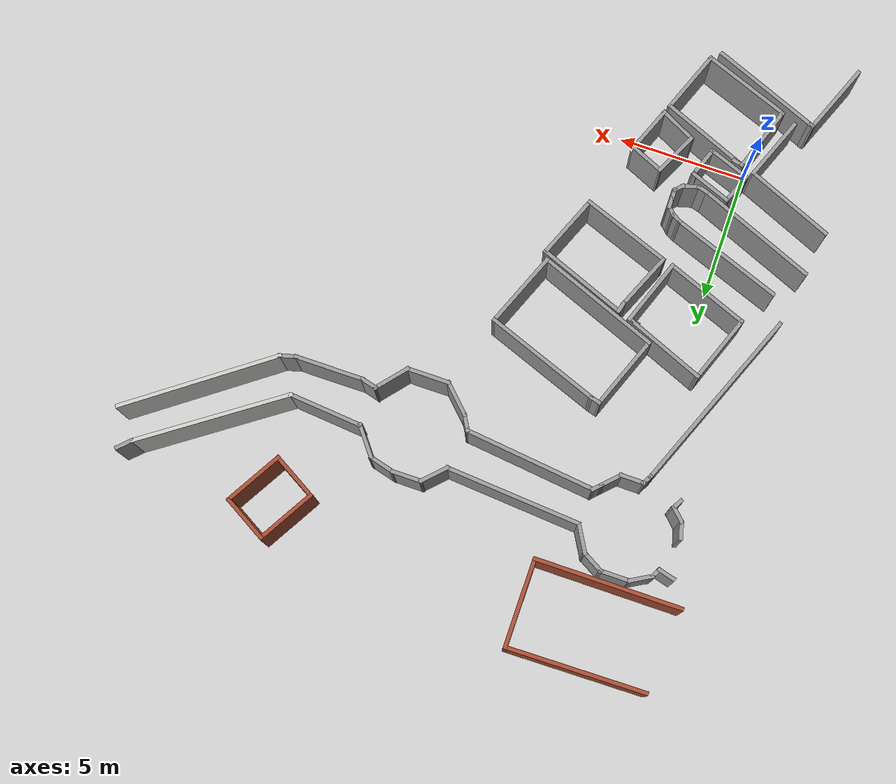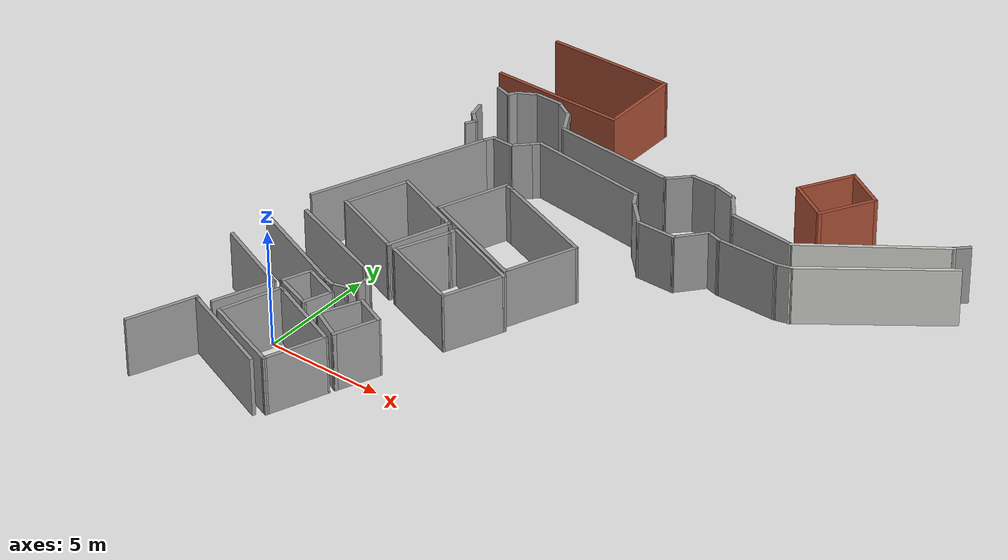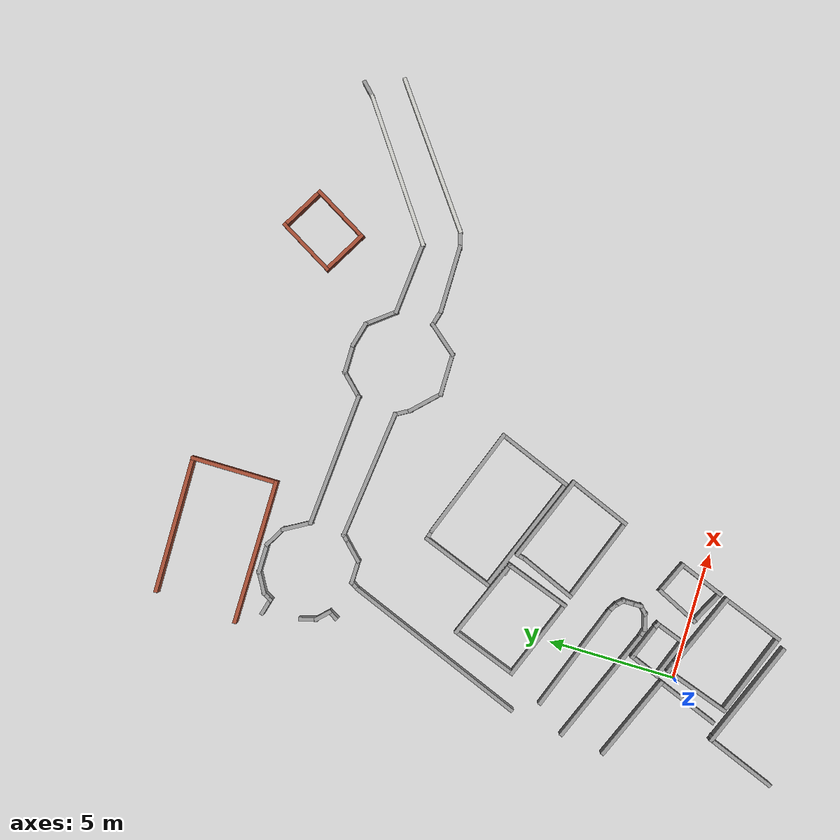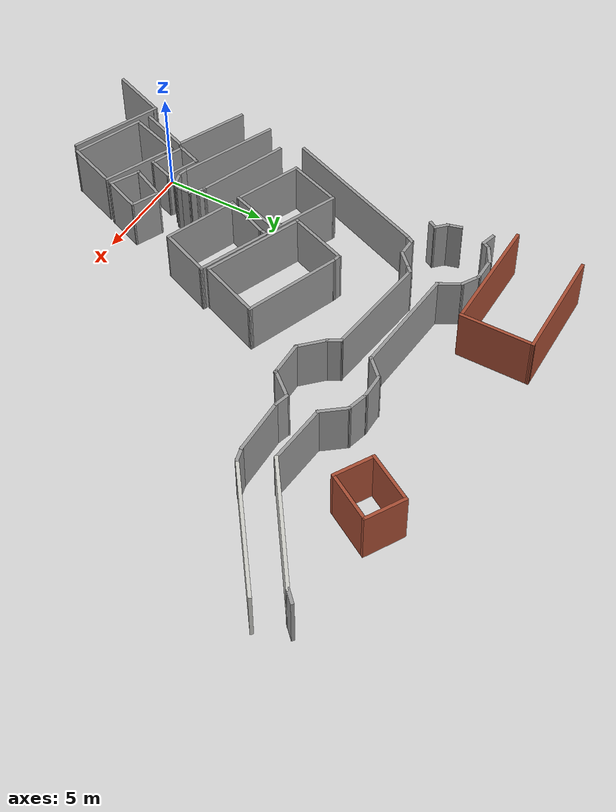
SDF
<sdf version="1.6">
 <model name="palazzo">
  <pose>-1.20783 -1.18535 0 0 -0 0</pose>
  <link name="Wall_0">
   <collision name="Wall_0_Collision">
    <geometry><box><size>2.5 0.15 2.5</size></box></geometry>
    <pose>0 0 1.25 0 -0 0</pose>
   </collision>
   <visual name="Wall_0_Visual">
    <pose>0 0 1.25 0 -0 0</pose>
    <geometry><box><size>2.5 0.15 2.5</size></box></geometry>
    <material>
     <script><uri>file://media/materials/scripts/gazebo.material</uri><name>Gazebo/Bricks</name></script>
     <ambient>1 1 1 1</ambient>
    </material>
    <meta><layer>0</layer></meta>
   </visual>
   <pose>13.2282 19.6167 0 0 -0 -2.0944</pose>
  </link>
  <link name="Wall_1">
   <collision name="Wall_1_Collision">
    <geometry><box><size>2 0.15 2.5</size></box></geometry>
    <pose>0 0 1.25 0 -0 0</pose>
   </collision>
   <visual name="Wall_1_Visual">
    <pose>0 0 1.25 0 -0 0</pose>
    <geometry><box><size>2 0.15 2.5</size></box></geometry>
    <material>
     <script><uri>file://media/materials/scripts/gazebo.material</uri><name>Gazebo/Bricks</name></script>
     <ambient>1 1 1 1</ambient>
    </material>
    <meta><layer>0</layer></meta>
   </visual>
   <pose>13.4418 18.1366 0 0 -0 -0.523599</pose>
  </link>
  <link name="Wall_100">
   <collision name="Wall_100_Collision">
    <geometry><box><size>1.53211 0.15 2.5</size></box></geometry>
    <pose>0 0 1.25 0 -0 0</pose>
   </collision>
   <visual name="Wall_100_Visual">
    <pose>0 0 1.25 0 -0 0</pose>
    <geometry><box><size>1.53211 0.15 2.5</size></box></geometry>
    <material>
     <script><uri>file://media/materials/scripts/gazebo.material</uri><name>Gazebo/Grey</name></script>
     <ambient>1 1 1 1</ambient>
    </material>
    <meta><layer>0</layer></meta>
   </visual>
   <pose>11.2943 13.5379 0 0 -0 -2.26873</pose>
  </link>
  <link name="Wall_102">
   <collision name="Wall_102_Collision">
    <geometry><box><size>1.75 0.15 2.5</size></box></geometry>
    <pose>0 0 1.25 0 -0 0</pose>
   </collision>
   <visual name="Wall_102_Visual">
    <pose>0 0 1.25 0 -0 0</pose>
    <geometry><box><size>1.75 0.15 2.5</size></box></geometry>
    <material>
     <script><uri>file://media/materials/scripts/gazebo.material</uri><name>Gazebo/Grey</name></script>
     <ambient>1 1 1 1</ambient>
    </material>
    <meta><layer>0</layer></meta>
   </visual>
   <pose>10.0502 13.0084 0 0 -0 3.14159</pose>
  </link>
  <link name="Wall_103">
   <collision name="Wall_103_Collision">
    <geometry><box><size>1.5 0.15 2.5</size></box></geometry>
    <pose>0 0 1.25 0 -0 0</pose>
   </collision>
   <visual name="Wall_103_Visual">
    <pose>0 0 1.25 0 -0 0</pose>
    <geometry><box><size>1.5 0.15 2.5</size></box></geometry>
    <material>
     <script><uri>file://media/materials/scripts/gazebo.material</uri><name>Gazebo/Grey</name></script>
     <ambient>1 1 1 1</ambient>
    </material>
    <meta><layer>0</layer></meta>
   </visual>
   <pose>8.77286 13.4857 0 0 -0 2.35619</pose>
  </link>
  <link name="Wall_104">
   <collision name="Wall_104_Collision">
    <geometry><box><size>0.75 0.15 2.5</size></box></geometry>
    <pose>0 0 1.25 0 -0 0</pose>
   </collision>
   <visual name="Wall_104_Visual">
    <pose>0 0 1.25 0 -0 0</pose>
    <geometry><box><size>0.75 0.15 2.5</size></box></geometry>
    <material>
     <script><uri>file://media/materials/scripts/gazebo.material</uri><name>Gazebo/Grey</name></script>
     <ambient>1 1 1 1</ambient>
    </material>
    <meta><layer>0</layer></meta>
   </visual>
   <pose>8.14556 14.2228 0 0 -0 2.0944</pose>
  </link>
  <link name="Wall_112">
   <collision name="Wall_112_Collision">
    <geometry><box><size>0.96649 0.15 2.5</size></box></geometry>
    <pose>0 0 1.25 0 -0 0</pose>
   </collision>
   <visual name="Wall_112_Visual">
    <pose>0 0 1.25 0 -0 0</pose>
    <geometry><box><size>0.96649 0.15 2.5</size></box></geometry>
    <material>
     <script><uri>file://media/materials/scripts/gazebo.material</uri><name>Gazebo/Grey</name></script>
     <ambient>1 1 1 1</ambient>
    </material>
    <meta><layer>0</layer></meta>
   </visual>
   <pose>2.42681 14.522 0 0 -0 -2.34798</pose>
  </link>
  <link name="Wall_113">
   <collision name="Wall_113_Collision">
    <geometry><box><size>1.01472 0.15 2.5</size></box></geometry>
    <pose>0 0 1.25 0 -0 0</pose>
   </collision>
   <visual name="Wall_113_Visual">
    <pose>0 0 1.25 0 -0 0</pose>
    <geometry><box><size>1.01472 0.15 2.5</size></box></geometry>
    <material>
     <script><uri>file://media/materials/scripts/gazebo.material</uri><name>Gazebo/Grey</name></script>
     <ambient>1 1 1 1</ambient>
    </material>
    <meta><layer>0</layer></meta>
   </visual>
   <pose>1.7082 14.2365 0 0 -0 3.12887</pose>
  </link>
  <link name="Wall_13">
   <collision name="Wall_13_Collision">
    <geometry><box><size>1.10389 0.15 2.5</size></box></geometry>
    <pose>0 0 1.25 0 -0 0</pose>
   </collision>
   <visual name="Wall_13_Visual">
    <pose>0 0 1.25 0 -0 0</pose>
    <geometry><box><size>1.10389 0.15 2.5</size></box></geometry>
    <material>
     <script><uri>file://media/materials/scripts/gazebo.material</uri><name>Gazebo/Grey</name></script>
     <ambient>1 1 1 1</ambient>
    </material>
    <meta><layer>0</layer></meta>
   </visual>
   <pose>10.5614 16.6824 0 0 -0 2.88449</pose>
  </link>
  <link name="Wall_14">
   <collision name="Wall_14_Collision">
    <geometry><box><size>1.25 0.15 2.5</size></box></geometry>
    <pose>0 0 1.25 0 -0 0</pose>
   </collision>
   <visual name="Wall_14_Visual">
    <pose>0 0 1.25 0 -0 0</pose>
    <geometry><box><size>1.25 0.15 2.5</size></box></geometry>
    <material>
     <script><uri>file://media/materials/scripts/gazebo.material</uri><name>Gazebo/Grey</name></script>
     <ambient>1 1 1 1</ambient>
    </material>
    <meta><layer>0</layer></meta>
   </visual>
   <pose>9.55013 16.8036 0 0 -0 3.14159</pose>
  </link>
  <link name="Wall_15">
   <collision name="Wall_15_Collision">
    <geometry><box><size>1.23667 0.15 2.5</size></box></geometry>
    <pose>0 0 1.25 0 -0 0</pose>
   </collision>
   <visual name="Wall_15_Visual">
    <pose>0 0 1.25 0 -0 0</pose>
    <geometry><box><size>1.23667 0.15 2.5</size></box></geometry>
    <material>
     <script><uri>file://media/materials/scripts/gazebo.material</uri><name>Gazebo/Grey</name></script>
     <ambient>1 1 1 1</ambient>
    </material>
    <meta><layer>0</layer></meta>
   </visual>
   <pose>8.6207 16.4147 0 0 -0 -2.34385</pose>
  </link>
  <link name="Wall_2">
   <collision name="Wall_2_Collision">
    <geometry><box><size>2.5 0.15 2.5</size></box></geometry>
    <pose>0 0 1.25 0 -0 0</pose>
   </collision>
   <visual name="Wall_2_Visual">
    <pose>0 0 1.25 0 -0 0</pose>
    <geometry><box><size>2.5 0.15 2.5</size></box></geometry>
    <material>
     <script><uri>file://media/materials/scripts/gazebo.material</uri><name>Gazebo/Bricks</name></script>
     <ambient>1 1 1 1</ambient>
    </material>
    <meta><layer>0</layer></meta>
   </visual>
   <pose>14.8303 18.6917 0 0 -0 1.0472</pose>
  </link>
  <link name="Wall_26">
   <collision name="Wall_26_Collision">
    <geometry><box><size>5.75 0.15 2.5</size></box></geometry>
    <pose>0 0 1.25 0 -0 0</pose>
   </collision>
   <visual name="Wall_26_Visual">
    <pose>0 0 1.25 0 -0 0</pose>
    <geometry><box><size>5.75 0.15 2.5</size></box></geometry>
    <material>
     <script><uri>file://media/materials/scripts/gazebo.material</uri><name>Gazebo/Bricks</name></script>
     <ambient>1 1 1 1</ambient>
    </material>
    <meta><layer>0</layer></meta>
   </visual>
   <pose>1.35503 18.1482 0 0 -0 0</pose>
  </link>
  <link name="Wall_27">
   <collision name="Wall_27_Collision">
    <geometry><box><size>3.5 0.15 2.5</size></box></geometry>
    <pose>0 0 1.25 0 -0 0</pose>
   </collision>
   <visual name="Wall_27_Visual">
    <pose>0 0 1.25 0 -0 0</pose>
    <geometry><box><size>3.5 0.15 2.5</size></box></geometry>
    <material>
     <script><uri>file://media/materials/scripts/gazebo.material</uri><name>Gazebo/Bricks</name></script>
     <ambient>1 1 1 1</ambient>
    </material>
    <meta><layer>0</layer></meta>
   </visual>
   <pose>4.15503 19.8232 0 0 -0 1.5708</pose>
  </link>
  <link name="Wall_28">
   <collision name="Wall_28_Collision">
    <geometry><box><size>5.46602 0.15 2.5</size></box></geometry>
    <pose>0 0 1.25 0 -0 0</pose>
   </collision>
   <visual name="Wall_28_Visual">
    <pose>0 0 1.25 0 -0 0</pose>
    <geometry><box><size>5.46602 0.15 2.5</size></box></geometry>
    <material>
     <script><uri>file://media/materials/scripts/gazebo.material</uri><name>Gazebo/Bricks</name></script>
     <ambient>1 1 1 1</ambient>
    </material>
    <meta><layer>0</layer></meta>
   </visual>
   <pose>1.49738 21.4544 0 0 -0 -3.12514</pose>
  </link>
  <link name="Wall_3">
   <collision name="Wall_3_Collision">
    <geometry><box><size>2 0.15 2.5</size></box></geometry>
    <pose>0 0 1.25 0 -0 0</pose>
   </collision>
   <visual name="Wall_3_Visual">
    <pose>0 0 1.25 0 -0 0</pose>
    <geometry><box><size>2 0.15 2.5</size></box></geometry>
    <material>
     <script><uri>file://media/materials/scripts/gazebo.material</uri><name>Gazebo/Bricks</name></script>
     <ambient>1 1 1 1</ambient>
    </material>
    <meta><layer>0</layer></meta>
   </visual>
   <pose>14.6168 20.1718 0 0 -0 2.61799</pose>
  </link>
  <link name="Wall_382">
   <collision name="Wall_382_Collision">
    <geometry><box><size>0.75 0.15 2.5</size></box></geometry>
    <pose>0 0 1.25 0 -0 0</pose>
   </collision>
   <visual name="Wall_382_Visual">
    <pose>0 0 1.25 0 -0 0</pose>
    <geometry><box><size>0.75 0.15 2.5</size></box></geometry>
    <material>
     <script><uri>file://media/materials/scripts/gazebo.material</uri><name>Gazebo/Grey</name></script>
     <ambient>1 1 1 1</ambient>
    </material>
    <meta><layer>0</layer></meta>
   </visual>
   <pose>19.7614 19.0299 0 0 -0 -2.35619</pose>
  </link>
  <link name="Wall_384">
   <collision name="Wall_384_Collision">
    <geometry><box><size>6.20788 0.15 2.5</size></box></geometry>
    <pose>0 0 1.25 0 -0 0</pose>
   </collision>
   <visual name="Wall_384_Visual">
    <pose>0 0 1.25 0 -0 0</pose>
    <geometry><box><size>6.20788 0.15 2.5</size></box></geometry>
    <material>
     <script><uri>file://media/materials/scripts/gazebo.material</uri><name>Gazebo/CeilingTiled</name></script>
     <ambient>1 1 1 1</ambient>
    </material>
    <meta><layer>0</layer></meta>
   </visual>
   <pose>17.0772 17.0675 0 0 -0 0.616086</pose>
  </link>
  <link name="Wall_386">
   <collision name="Wall_386_Collision">
    <geometry><box><size>2.95796 0.15 2.5</size></box></geometry>
    <pose>0 0 1.25 0 -0 0</pose>
   </collision>
   <visual name="Wall_386_Visual">
    <pose>0 0 1.25 0 -0 0</pose>
    <geometry><box><size>2.95796 0.15 2.5</size></box></geometry>
    <material>
     <script><uri>file://media/materials/scripts/gazebo.material</uri><name>Gazebo/Grey</name></script>
     <ambient>1 1 1 1</ambient>
    </material>
    <meta><layer>0</layer></meta>
   </visual>
   <pose>13.2067 15.4413 0 0 -0 -0.088478</pose>
  </link>
  <link name="Wall_388">
   <collision name="Wall_388_Collision">
    <geometry><box><size>1.41828 0.15 2.5</size></box></geometry>
    <pose>0 0 1.25 0 -0 0</pose>
   </collision>
   <visual name="Wall_388_Visual">
    <pose>0 0 1.25 0 -0 0</pose>
    <geometry><box><size>1.41828 0.15 2.5</size></box></geometry>
    <material>
     <script><uri>file://media/materials/scripts/gazebo.material</uri><name>Gazebo/Grey</name></script>
     <ambient>1 1 1 1</ambient>
    </material>
    <meta><layer>0</layer></meta>
   </visual>
   <pose>11.4154 16.0632 0 0 -0 -0.902851</pose>
  </link>
  <link name="Wall_62">
   <collision name="Wall_62_Collision">
    <geometry><box><size>1.25 0.15 2.5</size></box></geometry>
    <pose>0 0 1.25 0 -0 0</pose>
   </collision>
   <visual name="Wall_62_Visual">
    <pose>0 0 1.25 0 -0 0</pose>
    <geometry><box><size>1.25 0.15 2.5</size></box></geometry>
    <material>
     <script><uri>file://media/materials/scripts/gazebo.material</uri><name>Gazebo/Grey</name></script>
     <ambient>1 1 1 1</ambient>
    </material>
    <meta><layer>0</layer></meta>
   </visual>
   <pose>2.77316 16.8971 0 0 -0 2.0944</pose>
  </link>
  <link name="Wall_63">
   <collision name="Wall_63_Collision">
    <geometry><box><size>1 0.15 2.5</size></box></geometry>
    <pose>0 0 1.25 0 -0 0</pose>
   </collision>
   <visual name="Wall_63_Visual">
    <pose>0 0 1.25 0 -0 0</pose>
    <geometry><box><size>1 0.15 2.5</size></box></geometry>
    <material>
     <script><uri>file://media/materials/scripts/gazebo.material</uri><name>Gazebo/Grey</name></script>
     <ambient>1 1 1 1</ambient>
    </material>
    <meta><layer>0</layer></meta>
   </visual>
   <pose>2.1301 17.5859 0 0 -0 2.61799</pose>
  </link>
  <link name="Wall_64">
   <collision name="Wall_64_Collision">
    <geometry><box><size>1.25 0.15 2.5</size></box></geometry>
    <pose>0 0 1.25 0 -0 0</pose>
   </collision>
   <visual name="Wall_64_Visual">
    <pose>0 0 1.25 0 -0 0</pose>
    <geometry><box><size>1.25 0.15 2.5</size></box></geometry>
    <material>
     <script><uri>file://media/materials/scripts/gazebo.material</uri><name>Gazebo/Grey</name></script>
     <ambient>1 1 1 1</ambient>
    </material>
    <meta><layer>0</layer></meta>
   </visual>
   <pose>1.21204 17.7984 0 0 -0 3.14159</pose>
  </link>
  <link name="Wall_651">
   <collision name="Wall_651_Collision">
    <geometry><box><size>0.75 0.15 2.5</size></box></geometry>
    <pose>0 0 1.25 0 -0 0</pose>
   </collision>
   <visual name="Wall_651_Visual">
    <pose>0 0 1.25 0 -0 0</pose>
    <geometry><box><size>0.75 0.15 2.5</size></box></geometry>
    <material>
     <script><uri>file://media/materials/scripts/gazebo.material</uri><name>Gazebo/Grey</name></script>
     <ambient>1 1 1 1</ambient>
    </material>
    <meta><layer>0</layer></meta>
   </visual>
   <pose>12.0281 13.9897 0 0 -0 -0.261799</pose>
  </link>
  <link name="Wall_652">
   <collision name="Wall_652_Collision">
    <geometry><box><size>2.75 0.15 2.5</size></box></geometry>
    <pose>0 0 1.25 0 -0 0</pose>
   </collision>
   <visual name="Wall_652_Visual">
    <pose>0 0 1.25 0 -0 0</pose>
    <geometry><box><size>2.75 0.15 2.5</size></box></geometry>
    <material>
     <script><uri>file://media/materials/scripts/gazebo.material</uri><name>Gazebo/Grey</name></script>
     <ambient>1 1 1 1</ambient>
    </material>
    <meta><layer>0</layer></meta>
   </visual>
   <pose>13.6179 13.9121 0 0 -0 0</pose>
  </link>
  <link name="Wall_653">
   <collision name="Wall_653_Collision">
    <geometry><box><size>0.75 0.15 2.5</size></box></geometry>
    <pose>0 0 1.25 0 -0 0</pose>
   </collision>
   <visual name="Wall_653_Visual">
    <pose>0 0 1.25 0 -0 0</pose>
    <geometry><box><size>0.75 0.15 2.5</size></box></geometry>
    <material>
     <script><uri>file://media/materials/scripts/gazebo.material</uri><name>Gazebo/Grey</name></script>
     <ambient>1 1 1 1</ambient>
    </material>
    <meta><layer>0</layer></meta>
   </visual>
   <pose>15.2077 13.9897 0 0 -0 0.261799</pose>
  </link>
  <link name="Wall_655">
   <collision name="Wall_655_Collision">
    <geometry><box><size>6.38931 0.15 2.5</size></box></geometry>
    <pose>0 0 1.25 0 -0 0</pose>
   </collision>
   <visual name="Wall_655_Visual">
    <pose>0 0 1.25 0 -0 0</pose>
    <geometry><box><size>6.38931 0.15 2.5</size></box></geometry>
    <material>
     <script><uri>file://media/materials/scripts/gazebo.material</uri><name>Gazebo/CeilingTiled</name></script>
     <ambient>1 1 1 1</ambient>
    </material>
    <meta><layer>0</layer></meta>
   </visual>
   <pose>18.0057 15.9223 0 0 -0 -2.50482</pose>
  </link>
  <link name="Wall_657">
   <collision name="Wall_657_Collision">
    <geometry><box><size>5.35812 0.15 2.5</size></box></geometry>
    <pose>0 0 1.25 0 -0 0</pose>
   </collision>
   <visual name="Wall_657_Visual">
    <pose>0 0 1.25 0 -0 0</pose>
    <geometry><box><size>5.35812 0.15 2.5</size></box></geometry>
    <material>
     <script><uri>file://media/materials/scripts/gazebo.material</uri><name>Gazebo/Grey</name></script>
     <ambient>1 1 1 1</ambient>
    </material>
    <meta><layer>0</layer></meta>
   </visual>
   <pose>5.64472 16.2233 0 0 -0 -0.075915</pose>
  </link>
  <link name="Wall_659">
   <collision name="Wall_659_Collision">
    <geometry><box><size>0.5 0.15 2.5</size></box></geometry>
    <pose>0 0 1.25 0 -0 0</pose>
   </collision>
   <visual name="Wall_659_Visual">
    <pose>0 0 1.25 0 -0 0</pose>
    <geometry><box><size>0.5 0.15 2.5</size></box></geometry>
    <material>
     <script><uri>file://media/materials/scripts/gazebo.material</uri><name>Gazebo/Grey</name></script>
     <ambient>1 1 1 1</ambient>
    </material>
    <meta><layer>0</layer></meta>
   </visual>
   <pose>2.83685 14.9368 0 0 -0 0.785398</pose>
  </link>
  <link name="Wall_660">
   <collision name="Wall_660_Collision">
    <geometry><box><size>5.21803 0.15 2.5</size></box></geometry>
    <pose>0 0 1.25 0 -0 0</pose>
   </collision>
   <visual name="Wall_660_Visual">
    <pose>0 0 1.25 0 -0 0</pose>
    <geometry><box><size>5.21803 0.15 2.5</size></box></geometry>
    <material>
     <script><uri>file://media/materials/scripts/gazebo.material</uri><name>Gazebo/Grey</name></script>
     <ambient>1 1 1 1</ambient>
    </material>
    <meta><layer>0</layer></meta>
   </visual>
   <pose>5.47808 14.7716 0 0 -0 -0.114281</pose>
  </link>
  <link name="Wall_662">
   <collision name="Wall_662_Collision">
    <geometry><box><size>1 0.15 2.5</size></box></geometry>
    <pose>0 0 1.25 0 -0 0</pose>
   </collision>
   <visual name="Wall_662_Visual">
    <pose>0 0 1.25 0 -0 0</pose>
    <geometry><box><size>1 0.15 2.5</size></box></geometry>
    <material>
     <script><uri>file://media/materials/scripts/gazebo.material</uri><name>Gazebo/Grey</name></script>
     <ambient>1 1 1 1</ambient>
    </material>
    <meta><layer>0</layer></meta>
   </visual>
   <pose>0.293982 17.5859 0 0 -0 -2.61799</pose>
  </link>
  <link name="Wall_663">
   <collision name="Wall_663_Collision">
    <geometry><box><size>0.5 0.15 2.5</size></box></geometry>
    <pose>0 0 1.25 0 -0 0</pose>
   </collision>
   <visual name="Wall_663_Visual">
    <pose>0 0 1.25 0 -0 0</pose>
    <geometry><box><size>0.5 0.15 2.5</size></box></geometry>
    <material>
     <script><uri>file://media/materials/scripts/gazebo.material</uri><name>Gazebo/Grey</name></script>
     <ambient>1 1 1 1</ambient>
    </material>
    <meta><layer>0</layer></meta>
   </visual>
   <pose>-0.161579 17.2219 0 0 -0 -2.0944</pose>
  </link>
  <link name="Wall_664">
   <collision name="Wall_664_Collision">
    <geometry><box><size>0.75 0.15 2.5</size></box></geometry>
    <pose>0 0 1.25 0 -0 0</pose>
   </collision>
   <visual name="Wall_664_Visual">
    <pose>0 0 1.25 0 -0 0</pose>
    <geometry><box><size>0.75 0.15 2.5</size></box></geometry>
    <material>
     <script><uri>file://media/materials/scripts/gazebo.material</uri><name>Gazebo/Grey</name></script>
     <ambient>1 1 1 1</ambient>
    </material>
    <meta><layer>0</layer></meta>
   </visual>
   <pose>-0.538857 17.148 0 0 -0 2.87979</pose>
  </link>
  <link name="Wall_669">
   <collision name="Wall_669_Collision">
    <geometry><box><size>0.75 0.15 2.5</size></box></geometry>
    <pose>0 0 1.25 0 -0 0</pose>
   </collision>
   <visual name="Wall_669_Visual">
    <pose>0 0 1.25 0 -0 0</pose>
    <geometry><box><size>0.75 0.15 2.5</size></box></geometry>
    <material>
     <script><uri>file://media/materials/scripts/gazebo.material</uri><name>Gazebo/Grey</name></script>
     <ambient>1 1 1 1</ambient>
    </material>
    <meta><layer>0</layer></meta>
   </visual>
   <pose>-0.264142 14.9466 0 0 -0 2.35619</pose>
  </link>
  <link name="Wall_670">
   <collision name="Wall_670_Collision">
    <geometry><box><size>0.75 0.15 2.5</size></box></geometry>
    <pose>0 0 1.25 0 -0 0</pose>
   </collision>
   <visual name="Wall_670_Visual">
    <pose>0 0 1.25 0 -0 0</pose>
    <geometry><box><size>0.75 0.15 2.5</size></box></geometry>
    <material>
     <script><uri>file://media/materials/scripts/gazebo.material</uri><name>Gazebo/Grey</name></script>
     <ambient>1 1 1 1</ambient>
    </material>
    <meta><layer>0</layer></meta>
   </visual>
   <pose>-0.55392 15.4486 0 0 -0 1.8326</pose>
  </link>
  <link name="Wall_691">
   <collision name="Wall_691_Collision">
    <geometry><box><size>0.5 0.15 2.5</size></box></geometry>
    <pose>0 0 1.25 0 -0 0</pose>
   </collision>
   <visual name="Wall_691_Visual">
    <pose>0 0 1.25 0 -0 0</pose>
    <geometry><box><size>0.5 0.15 2.5</size></box></geometry>
    <material>
     <script><uri>file://media/materials/scripts/gazebo.material</uri><name>Gazebo/Grey</name></script>
     <ambient>1 1 1 1</ambient>
    </material>
    <meta><layer>0</layer></meta>
   </visual>
   <pose>1.18837 14.0904 0 0 -0 -2.0944</pose>
  </link>
  <link name="Wall_693">
   <collision name="Wall_693_Collision">
    <geometry><box><size>7.69663 0.15 2.5</size></box></geometry>
    <pose>0 0 1.25 0 -0 0</pose>
   </collision>
   <visual name="Wall_693_Visual">
    <pose>0 0 1.25 0 -0 0</pose>
    <geometry><box><size>7.69663 0.15 2.5</size></box></geometry>
    <material>
     <script><uri>file://media/materials/scripts/gazebo.material</uri><name>Gazebo/Grey</name></script>
     <ambient>1 1 1 1</ambient>
    </material>
    <meta><layer>0</layer></meta>
   </visual>
   <pose>-0.300491 10.4354 0 0 -0 1.19029</pose>
  </link>
  <link name="Wall_695">
   <collision name="Wall_695_Collision">
    <geometry><box><size>0.5 0.15 2.5</size></box></geometry>
    <pose>0 0 1.25 0 -0 0</pose>
   </collision>
   <visual name="Wall_695_Visual">
    <pose>0 0 1.25 0 -0 0</pose>
    <geometry><box><size>0.5 0.15 2.5</size></box></geometry>
    <material>
     <script><uri>file://media/materials/scripts/gazebo.material</uri><name>Gazebo/Grey</name></script>
     <ambient>1 1 1 1</ambient>
    </material>
    <meta><layer>0</layer></meta>
   </visual>
   <pose>-0.13951 14.583 0 0 -0 -2.0944</pose>
  </link>
  <link name="Wall_711">
   <collision name="Wall_711_Collision">
    <geometry><box><size>0.5 0.15 2.5</size></box></geometry>
    <pose>0 0 1.25 0 -0 0</pose>
   </collision>
   <visual name="Wall_711_Visual">
    <pose>0 0 1.25 0 -0 0</pose>
    <geometry><box><size>0.5 0.15 2.5</size></box></geometry>
    <material>
     <script><uri>file://media/materials/scripts/gazebo.material</uri><name>Gazebo/Grey</name></script>
     <ambient>1 1 1 1</ambient>
    </material>
    <meta><layer>0</layer></meta>
   </visual>
   <pose>3.18249 4.28897 0 0 -0 2.61799</pose>
  </link>
  <link name="Wall_712">
   <collision name="Wall_712_Collision">
    <geometry><box><size>4.57798 0.15 2.5</size></box></geometry>
    <pose>0 0 1.25 0 -0 0</pose>
   </collision>
   <visual name="Wall_712_Visual">
    <pose>0 0 1.25 0 -0 0</pose>
    <geometry><box><size>4.57798 0.15 2.5</size></box></geometry>
    <material>
     <script><uri>file://media/materials/scripts/gazebo.material</uri><name>Gazebo/Grey</name></script>
     <ambient>1 1 1 1</ambient>
    </material>
    <meta><layer>0</layer></meta>
   </visual>
   <pose>0.956515 5.15012 0 0 -0 2.78462</pose>
  </link>
  <link name="Wall_714">
   <collision name="Wall_714_Collision">
    <geometry><box><size>0.5 0.15 2.5</size></box></geometry>
    <pose>0 0 1.25 0 -0 0</pose>
   </collision>
   <visual name="Wall_714_Visual">
    <pose>0 0 1.25 0 -0 0</pose>
    <geometry><box><size>0.5 0.15 2.5</size></box></geometry>
    <material>
     <script><uri>file://media/materials/scripts/gazebo.material</uri><name>Gazebo/Grey</name></script>
     <ambient>1 1 1 1</ambient>
    </material>
    <meta><layer>0</layer></meta>
   </visual>
   <pose>3.45778 4.07772 0 0 -0 -0.785398</pose>
  </link>
  <link name="Wall_715">
   <collision name="Wall_715_Collision">
    <geometry><box><size>0.5 0.15 2.5</size></box></geometry>
    <pose>0 0 1.25 0 -0 0</pose>
   </collision>
   <visual name="Wall_715_Visual">
    <pose>0 0 1.25 0 -0 0</pose>
    <geometry><box><size>0.5 0.15 2.5</size></box></geometry>
    <material>
     <script><uri>file://media/materials/scripts/gazebo.material</uri><name>Gazebo/Grey</name></script>
     <ambient>1 1 1 1</ambient>
    </material>
    <meta><layer>0</layer></meta>
   </visual>
   <pose>3.58153 3.77898 0 0 -0 -1.5708</pose>
  </link>
  <link name="Wall_716">
   <collision name="Wall_716_Collision">
    <geometry><box><size>0.5 0.15 2.5</size></box></geometry>
    <pose>0 0 1.25 0 -0 0</pose>
   </collision>
   <visual name="Wall_716_Visual">
    <pose>0 0 1.25 0 -0 0</pose>
    <geometry><box><size>0.5 0.15 2.5</size></box></geometry>
    <material>
     <script><uri>file://media/materials/scripts/gazebo.material</uri><name>Gazebo/Grey</name></script>
     <ambient>1 1 1 1</ambient>
    </material>
    <meta><layer>0</layer></meta>
   </visual>
   <pose>3.58153 3.42898 0 0 -0 -1.5708</pose>
  </link>
  <link name="Wall_717">
   <collision name="Wall_717_Collision">
    <geometry><box><size>0.5 0.15 2.5</size></box></geometry>
    <pose>0 0 1.25 0 -0 0</pose>
   </collision>
   <visual name="Wall_717_Visual">
    <pose>0 0 1.25 0 -0 0</pose>
    <geometry><box><size>0.5 0.15 2.5</size></box></geometry>
    <material>
     <script><uri>file://media/materials/scripts/gazebo.material</uri><name>Gazebo/Grey</name></script>
     <ambient>1 1 1 1</ambient>
    </material>
    <meta><layer>0</layer></meta>
   </visual>
   <pose>3.45778 3.13023 0 0 -0 -2.35619</pose>
  </link>
  <link name="Wall_718">
   <collision name="Wall_718_Collision">
    <geometry><box><size>0.75 0.15 2.5</size></box></geometry>
    <pose>0 0 1.25 0 -0 0</pose>
   </collision>
   <visual name="Wall_718_Visual">
    <pose>0 0 1.25 0 -0 0</pose>
    <geometry><box><size>0.75 0.15 2.5</size></box></geometry>
    <material>
     <script><uri>file://media/materials/scripts/gazebo.material</uri><name>Gazebo/Grey</name></script>
     <ambient>1 1 1 1</ambient>
    </material>
    <meta><layer>0</layer></meta>
   </visual>
   <pose>3.04426 2.92885 0 0 -0 -2.87979</pose>
  </link>
  <link name="Wall_719">
   <collision name="Wall_719_Collision">
    <geometry><box><size>0.5 0.15 2.5</size></box></geometry>
    <pose>0 0 1.25 0 -0 0</pose>
   </collision>
   <visual name="Wall_719_Visual">
    <pose>0 0 1.25 0 -0 0</pose>
    <geometry><box><size>0.5 0.15 2.5</size></box></geometry>
    <material>
     <script><uri>file://media/materials/scripts/gazebo.material</uri><name>Gazebo/Grey</name></script>
     <ambient>1 1 1 1</ambient>
    </material>
    <meta><layer>0</layer></meta>
   </visual>
   <pose>2.58545 2.89649 0 0 -0 2.87979</pose>
  </link>
  <link name="Wall_721">
   <collision name="Wall_721_Collision">
    <geometry><box><size>4.9726 0.15 2.5</size></box></geometry>
    <pose>0 0 1.25 0 -0 0</pose>
   </collision>
   <visual name="Wall_721_Visual">
    <pose>0 0 1.25 0 -0 0</pose>
    <geometry><box><size>4.9726 0.15 2.5</size></box></geometry>
    <material>
     <script><uri>file://media/materials/scripts/gazebo.material</uri><name>Gazebo/Grey</name></script>
     <ambient>1 1 1 1</ambient>
    </material>
    <meta><layer>0</layer></meta>
   </visual>
   <pose>0.188024 3.86301 0 0 -0 -0.392007</pose>
  </link>
  <link name="Wall_759">
   <collision name="Wall_759_Collision">
    <geometry><box><size>0.5 0.15 2.5</size></box></geometry>
    <pose>0 0 1.25 0 -0 0</pose>
   </collision>
   <visual name="Wall_759_Visual">
    <pose>0 0 1.25 0 -0 0</pose>
    <geometry><box><size>0.5 0.15 2.5</size></box></geometry>
    <material>
     <script><uri>file://media/materials/scripts/gazebo.material</uri><name>Gazebo/Grey</name></script>
     <ambient>1 1 1 1</ambient>
    </material>
    <meta><layer>0</layer></meta>
   </visual>
   <pose>3.90607 11.8852 0 0 -0 -0.261799</pose>
  </link>
  <link name="Wall_761">
   <collision name="Wall_761_Collision">
    <geometry><box><size>4.7776 0.15 2.5</size></box></geometry>
    <pose>0 0 1.25 0 -0 0</pose>
   </collision>
   <visual name="Wall_761_Visual">
    <pose>0 0 1.25 0 -0 0</pose>
    <geometry><box><size>4.7776 0.15 2.5</size></box></geometry>
    <material>
     <script><uri>file://media/materials/scripts/gazebo.material</uri><name>Gazebo/Grey</name></script>
     <ambient>1 1 1 1</ambient>
    </material>
    <meta><layer>0</layer></meta>
   </visual>
   <pose>6.24163 11.0276 0 0 -0 2.78288</pose>
  </link>
  <link name="Wall_763">
   <collision name="Wall_763_Collision">
    <geometry><box><size>3.09147 0.15 2.5</size></box></geometry>
    <pose>0 0 1.25 0 -0 0</pose>
   </collision>
   <visual name="Wall_763_Visual">
    <pose>0 0 1.25 0 -0 0</pose>
    <geometry><box><size>3.09147 0.15 2.5</size></box></geometry>
    <material>
     <script><uri>file://media/materials/scripts/gazebo.material</uri><name>Gazebo/Grey</name></script>
     <ambient>1 1 1 1</ambient>
    </material>
    <meta><layer>0</layer></meta>
   </visual>
   <pose>3.21396 10.5559 0 0 -0 1.20718</pose>
  </link>
  <link name="Wall_765">
   <collision name="Wall_765_Collision">
    <geometry><box><size>3.20174 0.15 2.5</size></box></geometry>
    <pose>0 0 1.25 0 -0 0</pose>
   </collision>
   <visual name="Wall_765_Visual">
    <pose>0 0 1.25 0 -0 0</pose>
    <geometry><box><size>3.20174 0.15 2.5</size></box></geometry>
    <material>
     <script><uri>file://media/materials/scripts/gazebo.material</uri><name>Gazebo/Grey</name></script>
     <ambient>1 1 1 1</ambient>
    </material>
    <meta><layer>0</layer></meta>
   </visual>
   <pose>7.84252 8.79819 0 0 -0 1.19103</pose>
  </link>
  <link name="Wall_767">
   <collision name="Wall_767_Collision">
    <geometry><box><size>5.0767 0.15 2.5</size></box></geometry>
    <pose>0 0 1.25 0 -0 0</pose>
   </collision>
   <visual name="Wall_767_Visual">
    <pose>0 0 1.25 0 -0 0</pose>
    <geometry><box><size>5.0767 0.15 2.5</size></box></geometry>
    <material>
     <script><uri>file://media/materials/scripts/gazebo.material</uri><name>Gazebo/Grey</name></script>
     <ambient>1 1 1 1</ambient>
    </material>
    <meta><layer>0</layer></meta>
   </visual>
   <pose>4.98388 8.2812 0 0 -0 -0.374087</pose>
  </link>
  <link name="Wall_769">
   <collision name="Wall_769_Collision">
    <geometry><box><size>0.5 0.15 2.5</size></box></geometry>
    <pose>0 0 1.25 0 -0 0</pose>
   </collision>
   <visual name="Wall_769_Visual">
    <pose>0 0 1.25 0 -0 0</pose>
    <geometry><box><size>0.5 0.15 2.5</size></box></geometry>
    <material>
     <script><uri>file://media/materials/scripts/gazebo.material</uri><name>Gazebo/Grey</name></script>
     <ambient>1 1 1 1</ambient>
    </material>
    <meta><layer>0</layer></meta>
   </visual>
   <pose>4.09316 8.23381 0 0 -0 -1.8326</pose>
  </link>
  <link name="Wall_771">
   <collision name="Wall_771_Collision">
    <geometry><box><size>2.41193 0.15 2.5</size></box></geometry>
    <pose>0 0 1.25 0 -0 0</pose>
   </collision>
   <visual name="Wall_771_Visual">
    <pose>0 0 1.25 0 -0 0</pose>
    <geometry><box><size>2.41193 0.15 2.5</size></box></geometry>
    <material>
     <script><uri>file://media/materials/scripts/gazebo.material</uri><name>Gazebo/Grey</name></script>
     <ambient>1 1 1 1</ambient>
    </material>
    <meta><layer>0</layer></meta>
   </visual>
   <pose>3.60659 7.02345 0 0 -0 1.16997</pose>
  </link>
  <link name="Wall_773">
   <collision name="Wall_773_Collision">
    <geometry><box><size>3.69421 0.15 2.5</size></box></geometry>
    <pose>0 0 1.25 0 -0 0</pose>
   </collision>
   <visual name="Wall_773_Visual">
    <pose>0 0 1.25 0 -0 0</pose>
    <geometry><box><size>3.69421 0.15 2.5</size></box></geometry>
    <material>
     <script><uri>file://media/materials/scripts/gazebo.material</uri><name>Gazebo/Grey</name></script>
     <ambient>1 1 1 1</ambient>
    </material>
    <meta><layer>0</layer></meta>
   </visual>
   <pose>5.78673 7.75205 0 0 -0 2.76555</pose>
  </link>
  <link name="Wall_775">
   <collision name="Wall_775_Collision">
    <geometry><box><size>2.69806 0.15 2.5</size></box></geometry>
    <pose>0 0 1.25 0 -0 0</pose>
   </collision>
   <visual name="Wall_775_Visual">
    <pose>0 0 1.25 0 -0 0</pose>
    <geometry><box><size>2.69806 0.15 2.5</size></box></geometry>
    <material>
     <script><uri>file://media/materials/scripts/gazebo.material</uri><name>Gazebo/Grey</name></script>
     <ambient>1 1 1 1</ambient>
    </material>
    <meta><layer>0</layer></meta>
   </visual>
   <pose>6.95452 5.92131 0 0 -0 1.18408</pose>
  </link>
  <link name="Wall_777">
   <collision name="Wall_777_Collision">
    <geometry><box><size>3.68371 0.15 2.5</size></box></geometry>
    <pose>0 0 1.25 0 -0 0</pose>
   </collision>
   <visual name="Wall_777_Visual">
    <pose>0 0 1.25 0 -0 0</pose>
    <geometry><box><size>3.68371 0.15 2.5</size></box></geometry>
    <material>
     <script><uri>file://media/materials/scripts/gazebo.material</uri><name>Gazebo/Grey</name></script>
     <ambient>1 1 1 1</ambient>
    </material>
    <meta><layer>0</layer></meta>
   </visual>
   <pose>4.81966 5.36174 0 0 -0 -0.358771</pose>
  </link>
  <link name="Wall_779">
   <collision name="Wall_779_Collision">
    <geometry><box><size>0.5 0.15 2.5</size></box></geometry>
    <pose>0 0 1.25 0 -0 0</pose>
   </collision>
   <visual name="Wall_779_Visual">
    <pose>0 0 1.25 0 -0 0</pose>
    <geometry><box><size>0.5 0.15 2.5</size></box></geometry>
    <material>
     <script><uri>file://media/materials/scripts/gazebo.material</uri><name>Gazebo/Grey</name></script>
     <ambient>1 1 1 1</ambient>
    </material>
    <meta><layer>0</layer></meta>
   </visual>
   <pose>3.48285 8.60628 0 0 -0 2.87979</pose>
  </link>
  <link name="Wall_781">
   <collision name="Wall_781_Collision">
    <geometry><box><size>2.77419 0.15 2.5</size></box></geometry>
    <pose>0 0 1.25 0 -0 0</pose>
   </collision>
   <visual name="Wall_781_Visual">
    <pose>0 0 1.25 0 -0 0</pose>
    <geometry><box><size>2.77419 0.15 2.5</size></box></geometry>
    <material>
     <script><uri>file://media/materials/scripts/gazebo.material</uri><name>Gazebo/Grey</name></script>
     <ambient>1 1 1 1</ambient>
    </material>
    <meta><layer>0</layer></meta>
   </visual>
   <pose>3.20788 7.3263 0 0 -0 1.22559</pose>
  </link>
  <link name="Wall_783">
   <collision name="Wall_783_Collision">
    <geometry><box><size>3.45034 0.15 2.5</size></box></geometry>
    <pose>0 0 1.25 0 -0 0</pose>
   </collision>
   <visual name="Wall_783_Visual">
    <pose>0 0 1.25 0 -0 0</pose>
    <geometry><box><size>3.45034 0.15 2.5</size></box></geometry>
    <material>
     <script><uri>file://media/materials/scripts/gazebo.material</uri><name>Gazebo/Grey</name></script>
     <ambient>1 1 1 1</ambient>
    </material>
    <meta><layer>0</layer></meta>
   </visual>
   <pose>2.12525 9.18745 0 0 -0 -0.389404</pose>
  </link>
  <link name="Wall_785">
   <collision name="Wall_785_Collision">
    <geometry><box><size>3.47059 0.15 2.5</size></box></geometry>
    <pose>0 0 1.25 0 -0 0</pose>
   </collision>
   <visual name="Wall_785_Visual">
    <pose>0 0 1.25 0 -0 0</pose>
    <geometry><box><size>3.47059 0.15 2.5</size></box></geometry>
    <material>
     <script><uri>file://media/materials/scripts/gazebo.material</uri><name>Gazebo/Grey</name></script>
     <ambient>1 1 1 1</ambient>
    </material>
    <meta><layer>0</layer></meta>
   </visual>
   <pose>1.219 6.69983 0 0 -0 -0.375064</pose>
  </link>
  <link name="Wall_787">
   <collision name="Wall_787_Collision">
    <geometry><box><size>2.82097 0.15 2.5</size></box></geometry>
    <pose>0 0 1.25 0 -0 0</pose>
   </collision>
   <visual name="Wall_787_Visual">
    <pose>0 0 1.25 0 -0 0</pose>
    <geometry><box><size>2.82097 0.15 2.5</size></box></geometry>
    <material>
     <script><uri>file://media/materials/scripts/gazebo.material</uri><name>Gazebo/Grey</name></script>
     <ambient>1 1 1 1</ambient>
    </material>
    <meta><layer>0</layer></meta>
   </visual>
   <pose>0.136371 8.56098 0 0 -0 1.21736</pose>
  </link>
  <link name="Wall_872">
   <collision name="Wall_872_Collision">
    <geometry><box><size>0.168756 0.15 2.5</size></box></geometry>
    <pose>0 0 1.25 0 -0 0</pose>
   </collision>
   <visual name="Wall_872_Visual">
    <pose>0 0 1.25 0 -0 0</pose>
    <geometry><box><size>0.168756 0.15 2.5</size></box></geometry>
    <material>
     <script><uri>file://media/materials/scripts/gazebo.material</uri><name>Gazebo/Grey</name></script>
     <ambient>1 1 1 1</ambient>
    </material>
    <meta><layer>0</layer></meta>
   </visual>
   <pose>3.60872 1.11553 0 0 -0 0.865218</pose>
  </link>
  <link name="Wall_874">
   <collision name="Wall_874_Collision">
    <geometry><box><size>1.89885 0.15 2.5</size></box></geometry>
    <pose>0 0 1.25 0 -0 0</pose>
   </collision>
   <visual name="Wall_874_Visual">
    <pose>0 0 1.25 0 -0 0</pose>
    <geometry><box><size>1.89885 0.15 2.5</size></box></geometry>
    <material>
     <script><uri>file://media/materials/scripts/gazebo.material</uri><name>Gazebo/Grey</name></script>
     <ambient>1 1 1 1</ambient>
    </material>
    <meta><layer>0</layer></meta>
   </visual>
   <pose>3.97991 1.89724 0 0 -0 -2.0169</pose>
  </link>
  <link name="Wall_876">
   <collision name="Wall_876_Collision">
    <geometry><box><size>1.47053 0.15 2.5</size></box></geometry>
    <pose>0 0 1.25 0 -0 0</pose>
   </collision>
   <visual name="Wall_876_Visual">
    <pose>0 0 1.25 0 -0 0</pose>
    <geometry><box><size>1.47053 0.15 2.5</size></box></geometry>
    <material>
     <script><uri>file://media/materials/scripts/gazebo.material</uri><name>Gazebo/Grey</name></script>
     <ambient>1 1 1 1</ambient>
    </material>
    <meta><layer>0</layer></meta>
   </visual>
   <pose>4.96083 2.41857 0 0 -0 2.72442</pose>
  </link>
  <link name="Wall_878">
   <collision name="Wall_878_Collision">
    <geometry><box><size>1.98556 0.15 2.5</size></box></geometry>
    <pose>0 0 1.25 0 -0 0</pose>
   </collision>
   <visual name="Wall_878_Visual">
    <pose>0 0 1.25 0 -0 0</pose>
    <geometry><box><size>1.98556 0.15 2.5</size></box></geometry>
    <material>
     <script><uri>file://media/materials/scripts/gazebo.material</uri><name>Gazebo/Grey</name></script>
     <ambient>1 1 1 1</ambient>
    </material>
    <meta><layer>0</layer></meta>
   </visual>
   <pose>5.22835 1.29703 0 0 -0 1.19584</pose>
  </link>
  <link name="Wall_880">
   <collision name="Wall_880_Collision">
    <geometry><box><size>1.60114 0.15 2.5</size></box></geometry>
    <pose>0 0 1.25 0 -0 0</pose>
   </collision>
   <visual name="Wall_880_Visual">
    <pose>0 0 1.25 0 -0 0</pose>
    <geometry><box><size>1.60114 0.15 2.5</size></box></geometry>
    <material>
     <script><uri>file://media/materials/scripts/gazebo.material</uri><name>Gazebo/Grey</name></script>
     <ambient>1 1 1 1</ambient>
    </material>
    <meta><layer>0</layer></meta>
   </visual>
   <pose>4.25429 0.775704 0 0 -0 2.66526</pose>
  </link>
  <link name="Wall_882">
   <collision name="Wall_882_Collision">
    <geometry><box><size>0.25 0.15 2.5</size></box></geometry>
    <pose>0 0 1.25 0 -0 0</pose>
   </collision>
   <visual name="Wall_882_Visual">
    <pose>0 0 1.25 0 -0 0</pose>
    <geometry><box><size>0.25 0.15 2.5</size></box></geometry>
    <material>
     <script><uri>file://media/materials/scripts/gazebo.material</uri><name>Gazebo/Grey</name></script>
     <ambient>1 1 1 1</ambient>
    </material>
    <meta><layer>0</layer></meta>
   </visual>
   <pose>3.05173 2.44357 0 0 -0 2.61799</pose>
  </link>
  <link name="Wall_884">
   <collision name="Wall_884_Collision">
    <geometry><box><size>1.74865 0.15 2.5</size></box></geometry>
    <pose>0 0 1.25 0 -0 0</pose>
   </collision>
   <visual name="Wall_884_Visual">
    <pose>0 0 1.25 0 -0 0</pose>
    <geometry><box><size>1.74865 0.15 2.5</size></box></geometry>
    <material>
     <script><uri>file://media/materials/scripts/gazebo.material</uri><name>Gazebo/Grey</name></script>
     <ambient>1 1 1 1</ambient>
    </material>
    <meta><layer>0</layer></meta>
   </visual>
   <pose>2.35076 2.7101 0 0 -0 -0.373335</pose>
  </link>
  <link name="Wall_886">
   <collision name="Wall_886_Collision">
    <geometry><box><size>1.33593 0.15 2.5</size></box></geometry>
    <pose>0 0 1.25 0 -0 0</pose>
   </collision>
   <visual name="Wall_886_Visual">
    <pose>0 0 1.25 0 -0 0</pose>
    <geometry><box><size>1.33593 0.15 2.5</size></box></geometry>
    <material>
     <script><uri>file://media/materials/scripts/gazebo.material</uri><name>Gazebo/Grey</name></script>
     <ambient>1 1 1 1</ambient>
    </material>
    <meta><layer>0</layer></meta>
   </visual>
   <pose>1.39042 2.44944 0 0 -0 1.19781</pose>
  </link>
  <link name="Wall_888">
   <collision name="Wall_888_Collision">
    <geometry><box><size>1.31742 0.15 2.5</size></box></geometry>
    <pose>0 0 1.25 0 -0 0</pose>
   </collision>
   <visual name="Wall_888_Visual">
    <pose>0 0 1.25 0 -0 0</pose>
    <geometry><box><size>1.31742 0.15 2.5</size></box></geometry>
    <material>
     <script><uri>file://media/materials/scripts/gazebo.material</uri><name>Gazebo/Grey</name></script>
     <ambient>1 1 1 1</ambient>
    </material>
    <meta><layer>0</layer></meta>
   </visual>
   <pose>2.8961 1.86981 0 0 -0 1.22303</pose>
  </link>
  <link name="Wall_890">
   <collision name="Wall_890_Collision">
    <geometry><box><size>1.77819 0.15 2.5</size></box></geometry>
    <pose>0 0 1.25 0 -0 0</pose>
   </collision>
   <visual name="Wall_890_Visual">
    <pose>0 0 1.25 0 -0 0</pose>
    <geometry><box><size>1.77819 0.15 2.5</size></box></geometry>
    <material>
     <script><uri>file://media/materials/scripts/gazebo.material</uri><name>Gazebo/Grey</name></script>
     <ambient>1 1 1 1</ambient>
    </material>
    <meta><layer>0</layer></meta>
   </visual>
   <pose>1.93576 1.60914 0 0 -0 -0.361729</pose>
  </link>
  <link name="Wall_896">
   <collision name="Wall_896_Collision">
    <geometry><box><size>0.5 0.15 2.5</size></box></geometry>
    <pose>0 0 1.25 0 -0 0</pose>
   </collision>
   <visual name="Wall_896_Visual">
    <pose>0 0 1.25 0 -0 0</pose>
    <geometry><box><size>0.5 0.15 2.5</size></box></geometry>
    <material>
     <script><uri>file://media/materials/scripts/gazebo.material</uri><name>Gazebo/Grey</name></script>
     <ambient>1 1 1 1</ambient>
    </material>
    <meta><layer>0</layer></meta>
   </visual>
   <pose>1.63835 1.46781 0 0 -0 -0.261799</pose>
  </link>
  <link name="Wall_900">
   <collision name="Wall_900_Collision">
    <geometry><box><size>3.71962 0.15 2.5</size></box></geometry>
    <pose>0 0 1.25 0 -0 0</pose>
   </collision>
   <visual name="Wall_900_Visual">
    <pose>0 0 1.25 0 -0 0</pose>
    <geometry><box><size>3.71962 0.15 2.5</size></box></geometry>
    <material>
     <script><uri>file://media/materials/scripts/gazebo.material</uri><name>Gazebo/Grey</name></script>
     <ambient>1 1 1 1</ambient>
    </material>
    <meta><layer>0</layer></meta>
   </visual>
   <pose>3.11561 0.823721 0 0 -0 2.74503</pose>
  </link>
  <link name="Wall_902">
   <collision name="Wall_902_Collision">
    <geometry><box><size>2.65974 0.15 2.5</size></box></geometry>
    <pose>0 0 1.25 0 -0 0</pose>
   </collision>
   <visual name="Wall_902_Visual">
    <pose>0 0 1.25 0 -0 0</pose>
    <geometry><box><size>2.65974 0.15 2.5</size></box></geometry>
    <material>
     <script><uri>file://media/materials/scripts/gazebo.material</uri><name>Gazebo/Grey</name></script>
     <ambient>1 1 1 1</ambient>
    </material>
    <meta><layer>0</layer></meta>
   </visual>
   <pose>4.31603 -1.03865 0 0 -0 1.20755</pose>
  </link>
  <link name="Wall_904">
   <collision name="Wall_904_Collision">
    <geometry><box><size>2.77481 0.15 2.5</size></box></geometry>
    <pose>0 0 1.25 0 -0 0</pose>
   </collision>
   <visual name="Wall_904_Visual">
    <pose>0 0 1.25 0 -0 0</pose>
    <geometry><box><size>2.77481 0.15 2.5</size></box></geometry>
    <material>
     <script><uri>file://media/materials/scripts/gazebo.material</uri><name>Gazebo/Grey</name></script>
     <ambient>1 1 1 1</ambient>
    </material>
    <meta><layer>0</layer></meta>
   </visual>
   <pose>1.04402 0.271525 0 0 -0 1.24078</pose>
  </link>
  <link name="Wall_906">
   <collision name="Wall_906_Collision">
    <geometry><box><size>3.63043 0.15 2.5</size></box></geometry>
    <pose>0 0 1.25 0 -0 0</pose>
   </collision>
   <visual name="Wall_906_Visual">
    <pose>0 0 1.25 0 -0 0</pose>
    <geometry><box><size>3.63043 0.15 2.5</size></box></geometry>
    <material>
     <script><uri>file://media/materials/scripts/gazebo.material</uri><name>Gazebo/Grey</name></script>
     <ambient>1 1 1 1</ambient>
    </material>
    <meta><layer>0</layer></meta>
   </visual>
   <pose>2.24444 -1.59085 0 0 -0 -0.364768</pose>
  </link>
  <link name="Wall_915">
   <collision name="Wall_915_Collision">
    <geometry><box><size>3.68675 0.15 2.5</size></box></geometry>
    <pose>0 0 1.25 0 -0 0</pose>
   </collision>
   <visual name="Wall_915_Visual">
    <pose>0 0 1.25 0 -0 0</pose>
    <geometry><box><size>3.68675 0.15 2.5</size></box></geometry>
    <material>
     <script><uri>file://media/materials/scripts/gazebo.material</uri><name>Gazebo/Grey</name></script>
     <ambient>1 1 1 1</ambient>
    </material>
    <meta><layer>0</layer></meta>
   </visual>
   <pose>-0.662813 2.34978 0 0 -0 2.7389</pose>
  </link>
  <link name="Wall_917">
   <collision name="Wall_917_Collision">
    <geometry><box><size>2.65266 0.15 2.5</size></box></geometry>
    <pose>0 0 1.25 0 -0 0</pose>
   </collision>
   <visual name="Wall_917_Visual">
    <pose>0 0 1.25 0 -0 0</pose>
    <geometry><box><size>2.65266 0.15 2.5</size></box></geometry>
    <material>
     <script><uri>file://media/materials/scripts/gazebo.material</uri><name>Gazebo/Grey</name></script>
     <ambient>1 1 1 1</ambient>
    </material>
    <meta><layer>0</layer></meta>
   </visual>
   <pose>0.509778 0.490828 0 0 -0 1.19923</pose>
  </link>
  <link name="Wall_933">
   <collision name="Wall_933_Collision">
    <geometry><box><size>0.25 0.15 2.5</size></box></geometry>
    <pose>0 0 1.25 0 -0 0</pose>
   </collision>
   <visual name="Wall_933_Visual">
    <pose>0 0 1.25 0 -0 0</pose>
    <geometry><box><size>0.25 0.15 2.5</size></box></geometry>
    <material>
     <script><uri>file://media/materials/scripts/gazebo.material</uri><name>Gazebo/Grey</name></script>
     <ambient>1 1 1 1</ambient>
    </material>
    <meta><layer>0</layer></meta>
   </visual>
   <pose>-0.56314 -0.852205 0 0 -0 -0.261799</pose>
  </link>
  <link name="Wall_935">
   <collision name="Wall_935_Collision">
    <geometry><box><size>4.60575 0.15 2.5</size></box></geometry>
    <pose>0 0 1.25 0 -0 0</pose>
   </collision>
   <visual name="Wall_935_Visual">
    <pose>0 0 1.25 0 -0 0</pose>
    <geometry><box><size>4.60575 0.15 2.5</size></box></geometry>
    <material>
     <script><uri>file://media/materials/scripts/gazebo.material</uri><name>Gazebo/Grey</name></script>
     <ambient>1 1 1 1</ambient>
    </material>
    <meta><layer>0</layer></meta>
   </visual>
   <pose>1.4524 -1.67832 0 0 -0 2.75545</pose>
  </link>
  <link name="Wall_937">
   <collision name="Wall_937_Collision">
    <geometry><box><size>2.97376 0.15 2.5</size></box></geometry>
    <pose>0 0 1.25 0 -0 0</pose>
   </collision>
   <visual name="Wall_937_Visual">
    <pose>0 0 1.25 0 -0 0</pose>
    <geometry><box><size>2.97376 0.15 2.5</size></box></geometry>
    <material>
     <script><uri>file://media/materials/scripts/gazebo.material</uri><name>Gazebo/Grey</name></script>
     <ambient>1 1 1 1</ambient>
    </material>
    <meta><layer>0</layer></meta>
   </visual>
   <pose>-1.13237 -2.15153 0 0 -0 1.19291</pose>
  </link>
  <static>1</static>
 </model>
</sdf>
